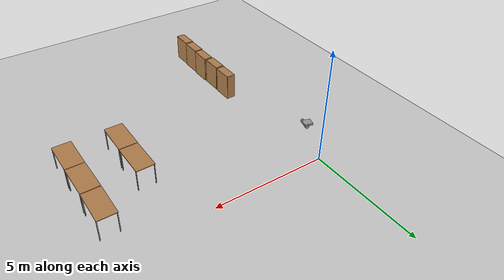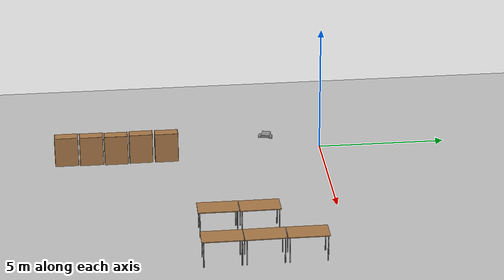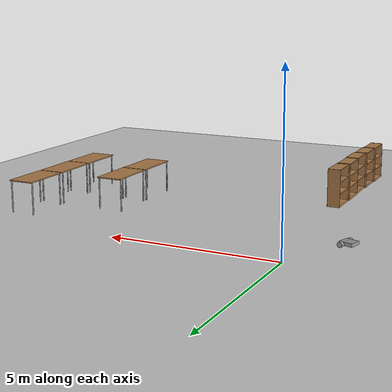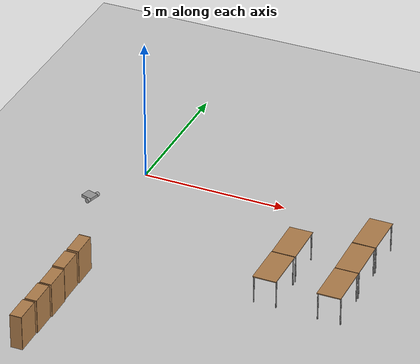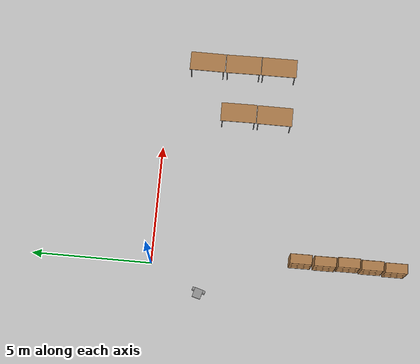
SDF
<sdf version="1.6">
 <world name="default">
  <model name="ground_plane">
   <static>1</static>
   <link name="link">
    <collision name="collision">
     <geometry><plane><normal>0 0 1</normal><size>100 100</size></plane></geometry>
     <surface>
      <contact><collide_bitmask>65535</collide_bitmask></contact>
      <friction><ode><mu>100</mu><mu2>50</mu2></ode></friction>
     </surface>
    </collision>
    <visual name="visual">
     <cast_shadows>0</cast_shadows>
     <geometry><plane><normal>0 0 1</normal><size>100 100</size></plane></geometry>
     <material>
      <script><uri>file://media/materials/scripts/gazebo.material</uri><name>Gazebo/Grey</name></script>
     </material>
    </visual>
   </link>
  </model>
  <model name="CasterWheelRobot_clone">
   <link name="link_2">
    <pose>0.03 0 0.025 0 -0 0</pose>
    <inertial>
     <mass>0.0155432</mass>
     <inertia>
      <ixx>0.0001924</ixx>
      <ixy>0</ixy>
      <ixz>0</ixz>
      <iyy>0.0002189</iyy>
      <iyz>0</iyz>
      <izz>0.00038243</izz>
     </inertia>
    </inertial>
    <visual name="visual">
     <geometry><box><size>0.4 0.35 0.1</size></box></geometry>
     <material>
      <lighting>1</lighting>
      <script><uri>file://media/materials/scripts/gazebo.material</uri><name>Gazebo/Grey</name></script>
      <shader type="pixel"><normal_map>__default__</normal_map></shader>
      <ambient>0.3 0.3 0.3 1</ambient>
      <diffuse>0.7 0.7 0.7 1</diffuse>
      <specular>0.01 0.01 0.01 1</specular>
      <emissive>0 0 0 1</emissive>
     </material>
    </visual>
    <collision name="collision">
     <geometry><box><size>0.4 0.35 0.1</size></box></geometry>
     <surface>
      <friction>
       <ode><mu>1</mu><mu2>1</mu2><fdir1>0 0 0</fdir1><slip1>0</slip1><slip2>0</slip2></ode>
       <torsional>
        <coefficient>1</coefficient>
        <patch_radius>0</patch_radius>
        <surface_radius>0</surface_radius>
        <use_patch_radius>1</use_patch_radius>
        <ode><slip>0</slip></ode>
       </torsional>
      </friction>
      <bounce><restitution_coefficient>0</restitution_coefficient><threshold>1e+06</threshold></bounce>
      <contact>
       <collide_without_contact>0</collide_without_contact>
       <collide_without_contact_bitmask>1</collide_without_contact_bitmask>
       <collide_bitmask>1</collide_bitmask>
       <ode>
        <soft_cfm>0</soft_cfm>
        <soft_erp>0.2</soft_erp>
        <kp>1e+13</kp>
        <kd>1</kd>
        <max_vel>0.01</max_vel>
        <min_depth>0</min_depth>
       </ode>
       <bullet>
        <split_impulse>1</split_impulse>
        <split_impulse_penetration_threshold>-0.01</split_impulse_penetration_threshold>
        <soft_cfm>0</soft_cfm>
        <soft_erp>0.2</soft_erp>
        <kp>1e+13</kp>
        <kd>1</kd>
       </bullet>
      </contact>
     </surface>
    </collision>
   </link>
   <link name="link_3">
    <pose>-0.09 -0.225013 0.005 1.5707 -0 0</pose>
    <inertial>
     <mass>1</mass>
     <inertia><ixx>0.145833</ixx><ixy>0</ixy><ixz>0</ixz><iyy>0.145833</iyy><iyz>0</iyz><izz>0.125</izz></inertia>
    </inertial>
    <visual name="visual">
     <geometry><cylinder><radius>0.08</radius><length>0.1</length></cylinder></geometry>
     <material>
      <lighting>1</lighting>
      <script><uri>file://media/materials/scripts/gazebo.material</uri><name>Gazebo/Grey</name></script>
      <shader type="pixel"><normal_map>__default__</normal_map></shader>
      <ambient>0.3 0.3 0.3 1</ambient>
      <diffuse>0.7 0.7 0.7 1</diffuse>
      <specular>0.01 0.01 0.01 1</specular>
      <emissive>0 0 0 1</emissive>
     </material>
    </visual>
    <collision name="collision">
     <geometry><cylinder><radius>0.08</radius><length>0.1</length></cylinder></geometry>
     <surface>
      <friction>
       <ode><mu>1</mu><mu2>1</mu2><fdir1>0 0 0</fdir1><slip1>0</slip1><slip2>0</slip2></ode>
       <torsional>
        <coefficient>1</coefficient>
        <patch_radius>0</patch_radius>
        <surface_radius>0</surface_radius>
        <use_patch_radius>1</use_patch_radius>
        <ode><slip>0</slip></ode>
       </torsional>
      </friction>
      <bounce><restitution_coefficient>0</restitution_coefficient><threshold>1e+06</threshold></bounce>
      <contact>
       <collide_without_contact>0</collide_without_contact>
       <collide_without_contact_bitmask>1</collide_without_contact_bitmask>
       <collide_bitmask>1</collide_bitmask>
       <ode>
        <soft_cfm>0</soft_cfm>
        <soft_erp>0.2</soft_erp>
        <kp>1e+13</kp>
        <kd>1</kd>
        <max_vel>0.01</max_vel>
        <min_depth>0</min_depth>
       </ode>
       <bullet>
        <split_impulse>1</split_impulse>
        <split_impulse_penetration_threshold>-0.01</split_impulse_penetration_threshold>
        <soft_cfm>0</soft_cfm>
        <soft_erp>0.2</soft_erp>
        <kp>1e+13</kp>
        <kd>1</kd>
       </bullet>
      </contact>
     </surface>
    </collision>
   </link>
   <link name="link_3_clone">
    <pose>-0.09 0.225008 0.005 -1.5707 0 0</pose>
    <inertial>
     <mass>1</mass>
     <inertia><ixx>0.145833</ixx><ixy>0</ixy><ixz>0</ixz><iyy>0.145833</iyy><iyz>0</iyz><izz>0.125</izz></inertia>
    </inertial>
    <visual name="visual">
     <geometry><cylinder><radius>0.08</radius><length>0.1</length></cylinder></geometry>
     <material>
      <lighting>1</lighting>
      <script><uri>file://media/materials/scripts/gazebo.material</uri><name>Gazebo/Grey</name></script>
      <shader type="pixel"><normal_map>__default__</normal_map></shader>
      <ambient>0.3 0.3 0.3 1</ambient>
      <diffuse>0.7 0.7 0.7 1</diffuse>
      <specular>0.01 0.01 0.01 1</specular>
      <emissive>0 0 0 1</emissive>
     </material>
    </visual>
    <collision name="collision">
     <geometry><cylinder><radius>0.08</radius><length>0.1</length></cylinder></geometry>
     <surface>
      <friction>
       <ode><mu>1</mu><mu2>1</mu2><fdir1>0 0 0</fdir1><slip1>0</slip1><slip2>0</slip2></ode>
       <torsional>
        <coefficient>1</coefficient>
        <patch_radius>0</patch_radius>
        <surface_radius>0</surface_radius>
        <use_patch_radius>1</use_patch_radius>
        <ode><slip>0</slip></ode>
       </torsional>
      </friction>
      <bounce><restitution_coefficient>0</restitution_coefficient><threshold>1e+06</threshold></bounce>
      <contact>
       <collide_without_contact>0</collide_without_contact>
       <collide_without_contact_bitmask>1</collide_without_contact_bitmask>
       <collide_bitmask>1</collide_bitmask>
       <ode>
        <soft_cfm>0</soft_cfm>
        <soft_erp>0.2</soft_erp>
        <kp>1e+13</kp>
        <kd>1</kd>
        <max_vel>0.01</max_vel>
        <min_depth>0</min_depth>
       </ode>
       <bullet>
        <split_impulse>1</split_impulse>
        <split_impulse_penetration_threshold>-0.01</split_impulse_penetration_threshold>
        <soft_cfm>0</soft_cfm>
        <soft_erp>0.2</soft_erp>
        <kp>1e+13</kp>
        <kd>1</kd>
       </bullet>
      </contact>
     </surface>
    </collision>
   </link>
   <link name="link_4">
    <pose>0.15 0 -0.035 0 -0 0</pose>
    <inertial>
     <mass>0.00336129</mass>
     <inertia>
      <ixx>7.54e-06</ixx>
      <ixy>0</ixy>
      <ixz>0</ixz>
      <iyy>7.54e-06</iyy>
      <iyz>0</iyz>
      <izz>7.54e-06</izz>
     </inertia>
    </inertial>
    <visual name="visual">
     <geometry><sphere><radius>0.04</radius></sphere></geometry>
     <material>
      <lighting>1</lighting>
      <script><uri>file://media/materials/scripts/gazebo.material</uri><name>Gazebo/Grey</name></script>
      <shader type="pixel"><normal_map>__default__</normal_map></shader>
      <ambient>0.3 0.3 0.3 1</ambient>
      <diffuse>0.7 0.7 0.7 1</diffuse>
      <specular>0.01 0.01 0.01 1</specular>
      <emissive>0 0 0 1</emissive>
     </material>
    </visual>
    <collision name="collision">
     <geometry><sphere><radius>0.04</radius></sphere></geometry>
     <surface>
      <friction>
       <ode><mu>1</mu><mu2>1</mu2><fdir1>0 0 0</fdir1><slip1>0</slip1><slip2>0</slip2></ode>
       <torsional>
        <coefficient>1</coefficient>
        <patch_radius>0</patch_radius>
        <surface_radius>0</surface_radius>
        <use_patch_radius>1</use_patch_radius>
        <ode><slip>0</slip></ode>
       </torsional>
      </friction>
      <bounce><restitution_coefficient>0</restitution_coefficient><threshold>1e+06</threshold></bounce>
      <contact>
       <collide_without_contact>0</collide_without_contact>
       <collide_without_contact_bitmask>1</collide_without_contact_bitmask>
       <collide_bitmask>1</collide_bitmask>
       <ode>
        <soft_cfm>0</soft_cfm>
        <soft_erp>0.2</soft_erp>
        <kp>1e+13</kp>
        <kd>1</kd>
        <max_vel>0.01</max_vel>
        <min_depth>0</min_depth>
       </ode>
       <bullet>
        <split_impulse>1</split_impulse>
        <split_impulse_penetration_threshold>-0.01</split_impulse_penetration_threshold>
        <soft_cfm>0</soft_cfm>
        <soft_erp>0.2</soft_erp>
        <kp>1e+13</kp>
        <kd>1</kd>
       </bullet>
      </contact>
     </surface>
    </collision>
   </link>
   <joint name="link_2_JOINT_10" type="ball">
    <parent>link_2</parent>
    <child>link_4</child>
    <physics>
     <ode><limit><cfm>0</cfm><erp>0.2</erp></limit><suspension><cfm>0</cfm><erp>0.2</erp></suspension></ode>
    </physics>
   </joint>
   <joint name="link_2_JOINT_8" type="revolute">
    <parent>link_2</parent>
    <child>link_3</child>
    <axis>
     <xyz>0 0 1</xyz>
     <use_parent_model_frame>0</use_parent_model_frame>
     <limit>
      <lower>-1.79769e+308</lower>
      <upper>1.79769e+308</upper>
      <effort>-1</effort>
      <velocity>-1</velocity>
     </limit>
     <dynamics>
      <spring_reference>0</spring_reference>
      <spring_stiffness>0</spring_stiffness>
      <damping>0</damping>
     </dynamics>
    </axis>
    <physics>
     <ode><limit><cfm>0</cfm><erp>0.2</erp></limit><suspension><cfm>0</cfm><erp>0.2</erp></suspension></ode>
    </physics>
   </joint>
   <joint name="link_2_JOINT_9" type="revolute">
    <parent>link_2</parent>
    <child>link_3_clone</child>
    <axis>
     <xyz>0 0 1</xyz>
     <use_parent_model_frame>0</use_parent_model_frame>
     <limit>
      <lower>-1.79769e+308</lower>
      <upper>1.79769e+308</upper>
      <effort>-1</effort>
      <velocity>-1</velocity>
     </limit>
     <dynamics>
      <spring_reference>0</spring_reference>
      <spring_stiffness>0</spring_stiffness>
      <damping>0</damping>
     </dynamics>
    </axis>
    <physics>
     <ode><limit><cfm>0</cfm><erp>0.2</erp></limit><suspension><cfm>0</cfm><erp>0.2</erp></suspension></ode>
    </physics>
   </joint>
   <static>0</static>
   <pose>-1.07252 -2.0486 0.074992 5.2e-05 -5.5e-05 2.86694</pose>
  </model>
  <model name="bookshelf_0">
   <static>1</static>
   <link name="link">
    <inertial><mass>1</mass></inertial>
    <collision name="back">
     <pose>0 0.005 0.6 0 -0 0</pose>
     <geometry><box><size>0.9 0.01 1.2</size></box></geometry>
    </collision>
    <visual name="visual1">
     <pose>0 0.005 0.6 0 -0 0</pose>
     <geometry><box><size>0.9 0.01 1.2</size></box></geometry>
     <material>
      <script><uri>file://media/materials/scripts/gazebo.material</uri><name>Gazebo/Wood</name></script>
     </material>
    </visual>
    <collision name="left_side">
     <pose>0.45 -0.195 0.6 0 -0 0</pose>
     <geometry><box><size>0.02 0.4 1.2</size></box></geometry>
    </collision>
    <visual name="visual2">
     <pose>0.45 -0.195 0.6 0 -0 0</pose>
     <geometry><box><size>0.02 0.4 1.2</size></box></geometry>
     <material>
      <script><uri>file://media/materials/scripts/gazebo.material</uri><name>Gazebo/Wood</name></script>
     </material>
    </visual>
    <collision name="right_side">
     <pose>-0.45 -0.195 0.6 0 -0 0</pose>
     <geometry><box><size>0.02 0.4 1.2</size></box></geometry>
    </collision>
    <visual name="visual3">
     <pose>-0.45 -0.195 0.6 0 -0 0</pose>
     <geometry><box><size>0.02 0.4 1.2</size></box></geometry>
     <material>
      <script><uri>file://media/materials/scripts/gazebo.material</uri><name>Gazebo/Wood</name></script>
     </material>
    </visual>
    <collision name="bottom">
     <pose>0 -0.195 0.03 0 -0 0</pose>
     <geometry><box><size>0.88 0.4 0.06</size></box></geometry>
    </collision>
    <visual name="visual4">
     <pose>0 -0.195 0.03 0 -0 0</pose>
     <geometry><box><size>0.88 0.4 0.06</size></box></geometry>
     <material>
      <script><uri>file://media/materials/scripts/gazebo.material</uri><name>Gazebo/Wood</name></script>
     </material>
    </visual>
    <collision name="top">
     <pose>0 -0.195 1.19 0 -0 0</pose>
     <geometry><box><size>0.88 0.4 0.02</size></box></geometry>
    </collision>
    <visual name="visual5">
     <pose>0 -0.195 1.19 0 -0 0</pose>
     <geometry><box><size>0.88 0.4 0.02</size></box></geometry>
     <material>
      <script><uri>file://media/materials/scripts/gazebo.material</uri><name>Gazebo/Wood</name></script>
     </material>
    </visual>
    <collision name="low_shelf">
     <pose>0 -0.195 0.43 0 -0 0</pose>
     <geometry><box><size>0.88 0.4 0.02</size></box></geometry>
    </collision>
    <visual name="visual6">
     <pose>0 -0.195 0.43 0 -0 0</pose>
     <geometry><box><size>0.88 0.4 0.02</size></box></geometry>
     <material>
      <script><uri>file://media/materials/scripts/gazebo.material</uri><name>Gazebo/Wood</name></script>
     </material>
    </visual>
    <collision name="high_shelf">
     <pose>0 -0.195 0.8 0 -0 0</pose>
     <geometry><box><size>0.88 0.4 0.02</size></box></geometry>
    </collision>
    <visual name="visual7">
     <pose>0 -0.195 0.8 0 -0 0</pose>
     <geometry><box><size>0.88 0.4 0.02</size></box></geometry>
     <material>
      <script><uri>file://media/materials/scripts/gazebo.material</uri><name>Gazebo/Wood</name></script>
     </material>
    </visual>
   </link>
   <pose>0.719214 -6.14444 0 0 0 -1.56185</pose>
  </model>
  <model name="bookshelf_0_clone">
   <static>1</static>
   <link name="link">
    <inertial><mass>1</mass></inertial>
    <collision name="back">
     <pose>0 0.005 0.6 0 -0 0</pose>
     <geometry><box><size>0.9 0.01 1.2</size></box></geometry>
    </collision>
    <visual name="visual1">
     <pose>0 0.005 0.6 0 -0 0</pose>
     <geometry><box><size>0.9 0.01 1.2</size></box></geometry>
     <material>
      <script><uri>file://media/materials/scripts/gazebo.material</uri><name>Gazebo/Wood</name></script>
     </material>
    </visual>
    <collision name="left_side">
     <pose>0.45 -0.195 0.6 0 -0 0</pose>
     <geometry><box><size>0.02 0.4 1.2</size></box></geometry>
    </collision>
    <visual name="visual2">
     <pose>0.45 -0.195 0.6 0 -0 0</pose>
     <geometry><box><size>0.02 0.4 1.2</size></box></geometry>
     <material>
      <script><uri>file://media/materials/scripts/gazebo.material</uri><name>Gazebo/Wood</name></script>
     </material>
    </visual>
    <collision name="right_side">
     <pose>-0.45 -0.195 0.6 0 -0 0</pose>
     <geometry><box><size>0.02 0.4 1.2</size></box></geometry>
    </collision>
    <visual name="visual3">
     <pose>-0.45 -0.195 0.6 0 -0 0</pose>
     <geometry><box><size>0.02 0.4 1.2</size></box></geometry>
     <material>
      <script><uri>file://media/materials/scripts/gazebo.material</uri><name>Gazebo/Wood</name></script>
     </material>
    </visual>
    <collision name="bottom">
     <pose>0 -0.195 0.03 0 -0 0</pose>
     <geometry><box><size>0.88 0.4 0.06</size></box></geometry>
    </collision>
    <visual name="visual4">
     <pose>0 -0.195 0.03 0 -0 0</pose>
     <geometry><box><size>0.88 0.4 0.06</size></box></geometry>
     <material>
      <script><uri>file://media/materials/scripts/gazebo.material</uri><name>Gazebo/Wood</name></script>
     </material>
    </visual>
    <collision name="top">
     <pose>0 -0.195 1.19 0 -0 0</pose>
     <geometry><box><size>0.88 0.4 0.02</size></box></geometry>
    </collision>
    <visual name="visual5">
     <pose>0 -0.195 1.19 0 -0 0</pose>
     <geometry><box><size>0.88 0.4 0.02</size></box></geometry>
     <material>
      <script><uri>file://media/materials/scripts/gazebo.material</uri><name>Gazebo/Wood</name></script>
     </material>
    </visual>
    <collision name="low_shelf">
     <pose>0 -0.195 0.43 0 -0 0</pose>
     <geometry><box><size>0.88 0.4 0.02</size></box></geometry>
    </collision>
    <visual name="visual6">
     <pose>0 -0.195 0.43 0 -0 0</pose>
     <geometry><box><size>0.88 0.4 0.02</size></box></geometry>
     <material>
      <script><uri>file://media/materials/scripts/gazebo.material</uri><name>Gazebo/Wood</name></script>
     </material>
    </visual>
    <collision name="high_shelf">
     <pose>0 -0.195 0.8 0 -0 0</pose>
     <geometry><box><size>0.88 0.4 0.02</size></box></geometry>
    </collision>
    <visual name="visual7">
     <pose>0 -0.195 0.8 0 -0 0</pose>
     <geometry><box><size>0.88 0.4 0.02</size></box></geometry>
     <material>
      <script><uri>file://media/materials/scripts/gazebo.material</uri><name>Gazebo/Wood</name></script>
     </material>
    </visual>
   </link>
   <pose>0.708957 -7.14114 0 0 0 -1.56185</pose>
  </model>
  <model name="bookshelf_0_clone_0">
   <static>1</static>
   <link name="link">
    <inertial><mass>1</mass></inertial>
    <collision name="back">
     <pose>0 0.005 0.6 0 -0 0</pose>
     <geometry><box><size>0.9 0.01 1.2</size></box></geometry>
    </collision>
    <visual name="visual1">
     <pose>0 0.005 0.6 0 -0 0</pose>
     <geometry><box><size>0.9 0.01 1.2</size></box></geometry>
     <material>
      <script><uri>file://media/materials/scripts/gazebo.material</uri><name>Gazebo/Wood</name></script>
     </material>
    </visual>
    <collision name="left_side">
     <pose>0.45 -0.195 0.6 0 -0 0</pose>
     <geometry><box><size>0.02 0.4 1.2</size></box></geometry>
    </collision>
    <visual name="visual2">
     <pose>0.45 -0.195 0.6 0 -0 0</pose>
     <geometry><box><size>0.02 0.4 1.2</size></box></geometry>
     <material>
      <script><uri>file://media/materials/scripts/gazebo.material</uri><name>Gazebo/Wood</name></script>
     </material>
    </visual>
    <collision name="right_side">
     <pose>-0.45 -0.195 0.6 0 -0 0</pose>
     <geometry><box><size>0.02 0.4 1.2</size></box></geometry>
    </collision>
    <visual name="visual3">
     <pose>-0.45 -0.195 0.6 0 -0 0</pose>
     <geometry><box><size>0.02 0.4 1.2</size></box></geometry>
     <material>
      <script><uri>file://media/materials/scripts/gazebo.material</uri><name>Gazebo/Wood</name></script>
     </material>
    </visual>
    <collision name="bottom">
     <pose>0 -0.195 0.03 0 -0 0</pose>
     <geometry><box><size>0.88 0.4 0.06</size></box></geometry>
    </collision>
    <visual name="visual4">
     <pose>0 -0.195 0.03 0 -0 0</pose>
     <geometry><box><size>0.88 0.4 0.06</size></box></geometry>
     <material>
      <script><uri>file://media/materials/scripts/gazebo.material</uri><name>Gazebo/Wood</name></script>
     </material>
    </visual>
    <collision name="top">
     <pose>0 -0.195 1.19 0 -0 0</pose>
     <geometry><box><size>0.88 0.4 0.02</size></box></geometry>
    </collision>
    <visual name="visual5">
     <pose>0 -0.195 1.19 0 -0 0</pose>
     <geometry><box><size>0.88 0.4 0.02</size></box></geometry>
     <material>
      <script><uri>file://media/materials/scripts/gazebo.material</uri><name>Gazebo/Wood</name></script>
     </material>
    </visual>
    <collision name="low_shelf">
     <pose>0 -0.195 0.43 0 -0 0</pose>
     <geometry><box><size>0.88 0.4 0.02</size></box></geometry>
    </collision>
    <visual name="visual6">
     <pose>0 -0.195 0.43 0 -0 0</pose>
     <geometry><box><size>0.88 0.4 0.02</size></box></geometry>
     <material>
      <script><uri>file://media/materials/scripts/gazebo.material</uri><name>Gazebo/Wood</name></script>
     </material>
    </visual>
    <collision name="high_shelf">
     <pose>0 -0.195 0.8 0 -0 0</pose>
     <geometry><box><size>0.88 0.4 0.02</size></box></geometry>
    </collision>
    <visual name="visual7">
     <pose>0 -0.195 0.8 0 -0 0</pose>
     <geometry><box><size>0.88 0.4 0.02</size></box></geometry>
     <material>
      <script><uri>file://media/materials/scripts/gazebo.material</uri><name>Gazebo/Wood</name></script>
     </material>
    </visual>
   </link>
   <pose>0.743605 -8.11252 0 0 0 -1.56185</pose>
  </model>
  <model name="bookshelf_0_clone_1">
   <static>1</static>
   <link name="link">
    <inertial><mass>1</mass></inertial>
    <collision name="back">
     <pose>0 0.005 0.6 0 -0 0</pose>
     <geometry><box><size>0.9 0.01 1.2</size></box></geometry>
    </collision>
    <visual name="visual1">
     <pose>0 0.005 0.6 0 -0 0</pose>
     <geometry><box><size>0.9 0.01 1.2</size></box></geometry>
     <material>
      <script><uri>file://media/materials/scripts/gazebo.material</uri><name>Gazebo/Wood</name></script>
     </material>
    </visual>
    <collision name="left_side">
     <pose>0.45 -0.195 0.6 0 -0 0</pose>
     <geometry><box><size>0.02 0.4 1.2</size></box></geometry>
    </collision>
    <visual name="visual2">
     <pose>0.45 -0.195 0.6 0 -0 0</pose>
     <geometry><box><size>0.02 0.4 1.2</size></box></geometry>
     <material>
      <script><uri>file://media/materials/scripts/gazebo.material</uri><name>Gazebo/Wood</name></script>
     </material>
    </visual>
    <collision name="right_side">
     <pose>-0.45 -0.195 0.6 0 -0 0</pose>
     <geometry><box><size>0.02 0.4 1.2</size></box></geometry>
    </collision>
    <visual name="visual3">
     <pose>-0.45 -0.195 0.6 0 -0 0</pose>
     <geometry><box><size>0.02 0.4 1.2</size></box></geometry>
     <material>
      <script><uri>file://media/materials/scripts/gazebo.material</uri><name>Gazebo/Wood</name></script>
     </material>
    </visual>
    <collision name="bottom">
     <pose>0 -0.195 0.03 0 -0 0</pose>
     <geometry><box><size>0.88 0.4 0.06</size></box></geometry>
    </collision>
    <visual name="visual4">
     <pose>0 -0.195 0.03 0 -0 0</pose>
     <geometry><box><size>0.88 0.4 0.06</size></box></geometry>
     <material>
      <script><uri>file://media/materials/scripts/gazebo.material</uri><name>Gazebo/Wood</name></script>
     </material>
    </visual>
    <collision name="top">
     <pose>0 -0.195 1.19 0 -0 0</pose>
     <geometry><box><size>0.88 0.4 0.02</size></box></geometry>
    </collision>
    <visual name="visual5">
     <pose>0 -0.195 1.19 0 -0 0</pose>
     <geometry><box><size>0.88 0.4 0.02</size></box></geometry>
     <material>
      <script><uri>file://media/materials/scripts/gazebo.material</uri><name>Gazebo/Wood</name></script>
     </material>
    </visual>
    <collision name="low_shelf">
     <pose>0 -0.195 0.43 0 -0 0</pose>
     <geometry><box><size>0.88 0.4 0.02</size></box></geometry>
    </collision>
    <visual name="visual6">
     <pose>0 -0.195 0.43 0 -0 0</pose>
     <geometry><box><size>0.88 0.4 0.02</size></box></geometry>
     <material>
      <script><uri>file://media/materials/scripts/gazebo.material</uri><name>Gazebo/Wood</name></script>
     </material>
    </visual>
    <collision name="high_shelf">
     <pose>0 -0.195 0.8 0 -0 0</pose>
     <geometry><box><size>0.88 0.4 0.02</size></box></geometry>
    </collision>
    <visual name="visual7">
     <pose>0 -0.195 0.8 0 -0 0</pose>
     <geometry><box><size>0.88 0.4 0.02</size></box></geometry>
     <material>
      <script><uri>file://media/materials/scripts/gazebo.material</uri><name>Gazebo/Wood</name></script>
     </material>
    </visual>
   </link>
   <pose>0.716668 -9.07495 0 0 0 -1.56185</pose>
  </model>
  <model name="bookshelf_0_clone_2">
   <static>1</static>
   <link name="link">
    <inertial><mass>1</mass></inertial>
    <collision name="back">
     <pose>0 0.005 0.6 0 -0 0</pose>
     <geometry><box><size>0.9 0.01 1.2</size></box></geometry>
    </collision>
    <visual name="visual1">
     <pose>0 0.005 0.6 0 -0 0</pose>
     <geometry><box><size>0.9 0.01 1.2</size></box></geometry>
     <material>
      <script><uri>file://media/materials/scripts/gazebo.material</uri><name>Gazebo/Wood</name></script>
     </material>
    </visual>
    <collision name="left_side">
     <pose>0.45 -0.195 0.6 0 -0 0</pose>
     <geometry><box><size>0.02 0.4 1.2</size></box></geometry>
    </collision>
    <visual name="visual2">
     <pose>0.45 -0.195 0.6 0 -0 0</pose>
     <geometry><box><size>0.02 0.4 1.2</size></box></geometry>
     <material>
      <script><uri>file://media/materials/scripts/gazebo.material</uri><name>Gazebo/Wood</name></script>
     </material>
    </visual>
    <collision name="right_side">
     <pose>-0.45 -0.195 0.6 0 -0 0</pose>
     <geometry><box><size>0.02 0.4 1.2</size></box></geometry>
    </collision>
    <visual name="visual3">
     <pose>-0.45 -0.195 0.6 0 -0 0</pose>
     <geometry><box><size>0.02 0.4 1.2</size></box></geometry>
     <material>
      <script><uri>file://media/materials/scripts/gazebo.material</uri><name>Gazebo/Wood</name></script>
     </material>
    </visual>
    <collision name="bottom">
     <pose>0 -0.195 0.03 0 -0 0</pose>
     <geometry><box><size>0.88 0.4 0.06</size></box></geometry>
    </collision>
    <visual name="visual4">
     <pose>0 -0.195 0.03 0 -0 0</pose>
     <geometry><box><size>0.88 0.4 0.06</size></box></geometry>
     <material>
      <script><uri>file://media/materials/scripts/gazebo.material</uri><name>Gazebo/Wood</name></script>
     </material>
    </visual>
    <collision name="top">
     <pose>0 -0.195 1.19 0 -0 0</pose>
     <geometry><box><size>0.88 0.4 0.02</size></box></geometry>
    </collision>
    <visual name="visual5">
     <pose>0 -0.195 1.19 0 -0 0</pose>
     <geometry><box><size>0.88 0.4 0.02</size></box></geometry>
     <material>
      <script><uri>file://media/materials/scripts/gazebo.material</uri><name>Gazebo/Wood</name></script>
     </material>
    </visual>
    <collision name="low_shelf">
     <pose>0 -0.195 0.43 0 -0 0</pose>
     <geometry><box><size>0.88 0.4 0.02</size></box></geometry>
    </collision>
    <visual name="visual6">
     <pose>0 -0.195 0.43 0 -0 0</pose>
     <geometry><box><size>0.88 0.4 0.02</size></box></geometry>
     <material>
      <script><uri>file://media/materials/scripts/gazebo.material</uri><name>Gazebo/Wood</name></script>
     </material>
    </visual>
    <collision name="high_shelf">
     <pose>0 -0.195 0.8 0 -0 0</pose>
     <geometry><box><size>0.88 0.4 0.02</size></box></geometry>
    </collision>
    <visual name="visual7">
     <pose>0 -0.195 0.8 0 -0 0</pose>
     <geometry><box><size>0.88 0.4 0.02</size></box></geometry>
     <material>
      <script><uri>file://media/materials/scripts/gazebo.material</uri><name>Gazebo/Wood</name></script>
     </material>
    </visual>
   </link>
   <pose>0.692825 -10.0428 0 0 0 -1.56185</pose>
  </model>
  <model name="table">
   <static>1</static>
   <link name="link">
    <collision name="surface">
     <pose>0 0 1 0 -0 0</pose>
     <geometry><box><size>1.5 0.8 0.03</size></box></geometry>
     <surface><friction><ode><mu>0.6</mu><mu2>0.6</mu2></ode></friction></surface>
    </collision>
    <visual name="visual1">
     <pose>0 0 1 0 -0 0</pose>
     <geometry><box><size>1.5 0.8 0.03</size></box></geometry>
     <material>
      <script><uri>file://media/materials/scripts/gazebo.material</uri><name>Gazebo/Wood</name></script>
     </material>
    </visual>
    <collision name="front_left_leg">
     <pose>0.68 0.38 0.5 0 -0 0</pose>
     <geometry><cylinder><radius>0.02</radius><length>1</length></cylinder></geometry>
    </collision>
    <visual name="front_left_leg">
     <pose>0.68 0.38 0.5 0 -0 0</pose>
     <geometry><cylinder><radius>0.02</radius><length>1</length></cylinder></geometry>
     <material>
      <script><uri>file://media/materials/scripts/gazebo.material</uri><name>Gazebo/Grey</name></script>
     </material>
    </visual>
    <collision name="front_right_leg">
     <pose>0.68 -0.38 0.5 0 -0 0</pose>
     <geometry><cylinder><radius>0.02</radius><length>1</length></cylinder></geometry>
    </collision>
    <visual name="front_right_leg">
     <pose>0.68 -0.38 0.5 0 -0 0</pose>
     <geometry><cylinder><radius>0.02</radius><length>1</length></cylinder></geometry>
     <material>
      <script><uri>file://media/materials/scripts/gazebo.material</uri><name>Gazebo/Grey</name></script>
     </material>
    </visual>
    <collision name="back_right_leg">
     <pose>-0.68 -0.38 0.5 0 -0 0</pose>
     <geometry><cylinder><radius>0.02</radius><length>1</length></cylinder></geometry>
    </collision>
    <visual name="back_right_leg">
     <pose>-0.68 -0.38 0.5 0 -0 0</pose>
     <geometry><cylinder><radius>0.02</radius><length>1</length></cylinder></geometry>
     <material>
      <script><uri>file://media/materials/scripts/gazebo.material</uri><name>Gazebo/Grey</name></script>
     </material>
    </visual>
    <collision name="back_left_leg">
     <pose>-0.68 0.38 0.5 0 -0 0</pose>
     <geometry><cylinder><radius>0.02</radius><length>1</length></cylinder></geometry>
    </collision>
    <visual name="back_left_leg">
     <pose>-0.68 0.38 0.5 0 -0 0</pose>
     <geometry><cylinder><radius>0.02</radius><length>1</length></cylinder></geometry>
     <material>
      <script><uri>file://media/materials/scripts/gazebo.material</uri><name>Gazebo/Grey</name></script>
     </material>
    </visual>
   </link>
   <pose>6.5516 -4.62051 0 0 0 -1.57528</pose>
  </model>
  <model name="table_clone">
   <static>1</static>
   <link name="link">
    <collision name="surface">
     <pose>0 0 1 0 -0 0</pose>
     <geometry><box><size>1.5 0.8 0.03</size></box></geometry>
     <surface><friction><ode><mu>0.6</mu><mu2>0.6</mu2></ode></friction></surface>
    </collision>
    <visual name="visual1">
     <pose>0 0 1 0 -0 0</pose>
     <geometry><box><size>1.5 0.8 0.03</size></box></geometry>
     <material>
      <script><uri>file://media/materials/scripts/gazebo.material</uri><name>Gazebo/Wood</name></script>
     </material>
    </visual>
    <collision name="front_left_leg">
     <pose>0.68 0.38 0.5 0 -0 0</pose>
     <geometry><cylinder><radius>0.02</radius><length>1</length></cylinder></geometry>
    </collision>
    <visual name="front_left_leg">
     <pose>0.68 0.38 0.5 0 -0 0</pose>
     <geometry><cylinder><radius>0.02</radius><length>1</length></cylinder></geometry>
     <material>
      <script><uri>file://media/materials/scripts/gazebo.material</uri><name>Gazebo/Grey</name></script>
     </material>
    </visual>
    <collision name="front_right_leg">
     <pose>0.68 -0.38 0.5 0 -0 0</pose>
     <geometry><cylinder><radius>0.02</radius><length>1</length></cylinder></geometry>
    </collision>
    <visual name="front_right_leg">
     <pose>0.68 -0.38 0.5 0 -0 0</pose>
     <geometry><cylinder><radius>0.02</radius><length>1</length></cylinder></geometry>
     <material>
      <script><uri>file://media/materials/scripts/gazebo.material</uri><name>Gazebo/Grey</name></script>
     </material>
    </visual>
    <collision name="back_right_leg">
     <pose>-0.68 -0.38 0.5 0 -0 0</pose>
     <geometry><cylinder><radius>0.02</radius><length>1</length></cylinder></geometry>
    </collision>
    <visual name="back_right_leg">
     <pose>-0.68 -0.38 0.5 0 -0 0</pose>
     <geometry><cylinder><radius>0.02</radius><length>1</length></cylinder></geometry>
     <material>
      <script><uri>file://media/materials/scripts/gazebo.material</uri><name>Gazebo/Grey</name></script>
     </material>
    </visual>
    <collision name="back_left_leg">
     <pose>-0.68 0.38 0.5 0 -0 0</pose>
     <geometry><cylinder><radius>0.02</radius><length>1</length></cylinder></geometry>
    </collision>
    <visual name="back_left_leg">
     <pose>-0.68 0.38 0.5 0 -0 0</pose>
     <geometry><cylinder><radius>0.02</radius><length>1</length></cylinder></geometry>
     <material>
      <script><uri>file://media/materials/scripts/gazebo.material</uri><name>Gazebo/Grey</name></script>
     </material>
    </visual>
   </link>
   <pose>6.55747 -3.09223 0 0 0 -1.5611</pose>
  </model>
  <model name="table_clone_0">
   <static>1</static>
   <link name="link">
    <collision name="surface">
     <pose>0 0 1 0 -0 0</pose>
     <geometry><box><size>1.5 0.8 0.03</size></box></geometry>
     <surface><friction><ode><mu>0.6</mu><mu2>0.6</mu2></ode></friction></surface>
    </collision>
    <visual name="visual1">
     <pose>0 0 1 0 -0 0</pose>
     <geometry><box><size>1.5 0.8 0.03</size></box></geometry>
     <material>
      <script><uri>file://media/materials/scripts/gazebo.material</uri><name>Gazebo/Wood</name></script>
     </material>
    </visual>
    <collision name="front_left_leg">
     <pose>0.68 0.38 0.5 0 -0 0</pose>
     <geometry><cylinder><radius>0.02</radius><length>1</length></cylinder></geometry>
    </collision>
    <visual name="front_left_leg">
     <pose>0.68 0.38 0.5 0 -0 0</pose>
     <geometry><cylinder><radius>0.02</radius><length>1</length></cylinder></geometry>
     <material>
      <script><uri>file://media/materials/scripts/gazebo.material</uri><name>Gazebo/Grey</name></script>
     </material>
    </visual>
    <collision name="front_right_leg">
     <pose>0.68 -0.38 0.5 0 -0 0</pose>
     <geometry><cylinder><radius>0.02</radius><length>1</length></cylinder></geometry>
    </collision>
    <visual name="front_right_leg">
     <pose>0.68 -0.38 0.5 0 -0 0</pose>
     <geometry><cylinder><radius>0.02</radius><length>1</length></cylinder></geometry>
     <material>
      <script><uri>file://media/materials/scripts/gazebo.material</uri><name>Gazebo/Grey</name></script>
     </material>
    </visual>
    <collision name="back_right_leg">
     <pose>-0.68 -0.38 0.5 0 -0 0</pose>
     <geometry><cylinder><radius>0.02</radius><length>1</length></cylinder></geometry>
    </collision>
    <visual name="back_right_leg">
     <pose>-0.68 -0.38 0.5 0 -0 0</pose>
     <geometry><cylinder><radius>0.02</radius><length>1</length></cylinder></geometry>
     <material>
      <script><uri>file://media/materials/scripts/gazebo.material</uri><name>Gazebo/Grey</name></script>
     </material>
    </visual>
    <collision name="back_left_leg">
     <pose>-0.68 0.38 0.5 0 -0 0</pose>
     <geometry><cylinder><radius>0.02</radius><length>1</length></cylinder></geometry>
    </collision>
    <visual name="back_left_leg">
     <pose>-0.68 0.38 0.5 0 -0 0</pose>
     <geometry><cylinder><radius>0.02</radius><length>1</length></cylinder></geometry>
     <material>
      <script><uri>file://media/materials/scripts/gazebo.material</uri><name>Gazebo/Grey</name></script>
     </material>
    </visual>
   </link>
   <pose>8.71658 -4.65125 0 0 0 -1.56761</pose>
  </model>
  <model name="table_clone_1">
   <static>1</static>
   <link name="link">
    <collision name="surface">
     <pose>0 0 1 0 -0 0</pose>
     <geometry><box><size>1.5 0.8 0.03</size></box></geometry>
     <surface><friction><ode><mu>0.6</mu><mu2>0.6</mu2></ode></friction></surface>
    </collision>
    <visual name="visual1">
     <pose>0 0 1 0 -0 0</pose>
     <geometry><box><size>1.5 0.8 0.03</size></box></geometry>
     <material>
      <script><uri>file://media/materials/scripts/gazebo.material</uri><name>Gazebo/Wood</name></script>
     </material>
    </visual>
    <collision name="front_left_leg">
     <pose>0.68 0.38 0.5 0 -0 0</pose>
     <geometry><cylinder><radius>0.02</radius><length>1</length></cylinder></geometry>
    </collision>
    <visual name="front_left_leg">
     <pose>0.68 0.38 0.5 0 -0 0</pose>
     <geometry><cylinder><radius>0.02</radius><length>1</length></cylinder></geometry>
     <material>
      <script><uri>file://media/materials/scripts/gazebo.material</uri><name>Gazebo/Grey</name></script>
     </material>
    </visual>
    <collision name="front_right_leg">
     <pose>0.68 -0.38 0.5 0 -0 0</pose>
     <geometry><cylinder><radius>0.02</radius><length>1</length></cylinder></geometry>
    </collision>
    <visual name="front_right_leg">
     <pose>0.68 -0.38 0.5 0 -0 0</pose>
     <geometry><cylinder><radius>0.02</radius><length>1</length></cylinder></geometry>
     <material>
      <script><uri>file://media/materials/scripts/gazebo.material</uri><name>Gazebo/Grey</name></script>
     </material>
    </visual>
    <collision name="back_right_leg">
     <pose>-0.68 -0.38 0.5 0 -0 0</pose>
     <geometry><cylinder><radius>0.02</radius><length>1</length></cylinder></geometry>
    </collision>
    <visual name="back_right_leg">
     <pose>-0.68 -0.38 0.5 0 -0 0</pose>
     <geometry><cylinder><radius>0.02</radius><length>1</length></cylinder></geometry>
     <material>
      <script><uri>file://media/materials/scripts/gazebo.material</uri><name>Gazebo/Grey</name></script>
     </material>
    </visual>
    <collision name="back_left_leg">
     <pose>-0.68 0.38 0.5 0 -0 0</pose>
     <geometry><cylinder><radius>0.02</radius><length>1</length></cylinder></geometry>
    </collision>
    <visual name="back_left_leg">
     <pose>-0.68 0.38 0.5 0 -0 0</pose>
     <geometry><cylinder><radius>0.02</radius><length>1</length></cylinder></geometry>
     <material>
      <script><uri>file://media/materials/scripts/gazebo.material</uri><name>Gazebo/Grey</name></script>
     </material>
    </visual>
   </link>
   <pose>8.705 -3.13008 0 0 0 -1.55702</pose>
  </model>
  <model name="table_clone_2">
   <static>1</static>
   <link name="link">
    <collision name="surface">
     <pose>0 0 1 0 -0 0</pose>
     <geometry><box><size>1.5 0.8 0.03</size></box></geometry>
     <surface><friction><ode><mu>0.6</mu><mu2>0.6</mu2></ode></friction></surface>
    </collision>
    <visual name="visual1">
     <pose>0 0 1 0 -0 0</pose>
     <geometry><box><size>1.5 0.8 0.03</size></box></geometry>
     <material>
      <script><uri>file://media/materials/scripts/gazebo.material</uri><name>Gazebo/Wood</name></script>
     </material>
    </visual>
    <collision name="front_left_leg">
     <pose>0.68 0.38 0.5 0 -0 0</pose>
     <geometry><cylinder><radius>0.02</radius><length>1</length></cylinder></geometry>
    </collision>
    <visual name="front_left_leg">
     <pose>0.68 0.38 0.5 0 -0 0</pose>
     <geometry><cylinder><radius>0.02</radius><length>1</length></cylinder></geometry>
     <material>
      <script><uri>file://media/materials/scripts/gazebo.material</uri><name>Gazebo/Grey</name></script>
     </material>
    </visual>
    <collision name="front_right_leg">
     <pose>0.68 -0.38 0.5 0 -0 0</pose>
     <geometry><cylinder><radius>0.02</radius><length>1</length></cylinder></geometry>
    </collision>
    <visual name="front_right_leg">
     <pose>0.68 -0.38 0.5 0 -0 0</pose>
     <geometry><cylinder><radius>0.02</radius><length>1</length></cylinder></geometry>
     <material>
      <script><uri>file://media/materials/scripts/gazebo.material</uri><name>Gazebo/Grey</name></script>
     </material>
    </visual>
    <collision name="back_right_leg">
     <pose>-0.68 -0.38 0.5 0 -0 0</pose>
     <geometry><cylinder><radius>0.02</radius><length>1</length></cylinder></geometry>
    </collision>
    <visual name="back_right_leg">
     <pose>-0.68 -0.38 0.5 0 -0 0</pose>
     <geometry><cylinder><radius>0.02</radius><length>1</length></cylinder></geometry>
     <material>
      <script><uri>file://media/materials/scripts/gazebo.material</uri><name>Gazebo/Grey</name></script>
     </material>
    </visual>
    <collision name="back_left_leg">
     <pose>-0.68 0.38 0.5 0 -0 0</pose>
     <geometry><cylinder><radius>0.02</radius><length>1</length></cylinder></geometry>
    </collision>
    <visual name="back_left_leg">
     <pose>-0.68 0.38 0.5 0 -0 0</pose>
     <geometry><cylinder><radius>0.02</radius><length>1</length></cylinder></geometry>
     <material>
      <script><uri>file://media/materials/scripts/gazebo.material</uri><name>Gazebo/Grey</name></script>
     </material>
    </visual>
   </link>
   <pose>8.69976 -1.59841 0 0 0 -1.57528</pose>
  </model>
 </world>
</sdf>
